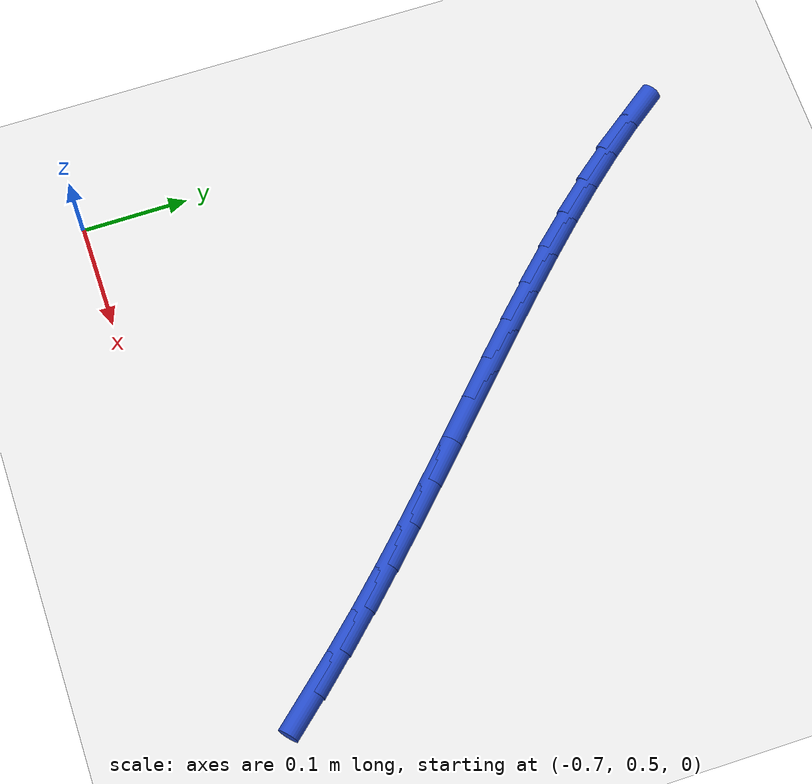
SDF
<sdf version="1.6">
 <world name="default">
  <model name="ground_plane">
   <static>1</static>
   <link name="link">
    <collision name="collision">
     <geometry><plane><normal>0 0 1</normal><size>100 100</size></plane></geometry>
     <surface><friction><ode><mu>100</mu><mu2>50</mu2></ode></friction></surface>
    </collision>
    <visual name="visual">
     <cast_shadows>0</cast_shadows>
     <geometry><plane><normal>0 0 1</normal><size>100 100</size></plane></geometry>
     <material>
      <script><uri>file://media/materials/scripts/gazebo.material</uri><name>Gazebo/WhiteGlow</name></script>
     </material>
    </visual>
   </link>
  </model>
  <model name="line">
   <link name="link_15">
    <pose>-0.21093745845667858 0.5709451672378543 0.01 0 1.57 -0.8494124675856856</pose>
    <collision name="collision">
     <geometry><cylinder><radius>0.01</radius><length>0.08</length></cylinder></geometry>
    </collision>
    <visual name="visual">
     <material>
      <script><name>Gazebo/Blue</name><uri>file://media/materials/scripts/gazebo.material</uri></script>
     </material>
     <geometry><cylinder><radius>0.01</radius><length>0.08</length></cylinder></geometry>
    </visual>
   </link>
   <link name="link_16">
    <pose>-0.23924236004793248 0.6031274088920169 0.01 0 1.57 -0.824879206002455</pose>
    <collision name="collision">
     <geometry><cylinder><radius>0.01</radius><length>0.08</length></cylinder></geometry>
    </collision>
    <visual name="visual">
     <material>
      <script><name>Gazebo/Blue</name><uri>file://media/materials/scripts/gazebo.material</uri></script>
     </material>
     <geometry><cylinder><radius>0.01</radius><length>0.08</length></cylinder></geometry>
    </visual>
   </link>
   <link name="link_17">
    <pose>-0.268456107073038 0.6347440517691096 0.01 0 1.57 -0.8046672164186457</pose>
    <collision name="collision">
     <geometry><cylinder><radius>0.01</radius><length>0.08</length></cylinder></geometry>
    </collision>
    <visual name="visual">
     <material>
      <script><name>Gazebo/Blue</name><uri>file://media/materials/scripts/gazebo.material</uri></script>
     </material>
     <geometry><cylinder><radius>0.01</radius><length>0.08</length></cylinder></geometry>
    </visual>
   </link>
   <link name="link_18">
    <pose>-0.2983870590863537 0.6658512976419765 0.01 0 1.57 -0.7886305568555553</pose>
    <collision name="collision">
     <geometry><cylinder><radius>0.01</radius><length>0.08</length></cylinder></geometry>
    </collision>
    <visual name="visual">
     <material>
      <script><name>Gazebo/Blue</name><uri>file://media/materials/scripts/gazebo.material</uri></script>
     </material>
     <geometry><cylinder><radius>0.01</radius><length>0.08</length></cylinder></geometry>
    </visual>
   </link>
   <link name="link_19">
    <pose>-0.3288435756422382 0.696505348283461 0.01 0 1.57 -0.7766611976439031</pose>
    <collision name="collision">
     <geometry><cylinder><radius>0.01</radius><length>0.08</length></cylinder></geometry>
    </collision>
    <visual name="visual">
     <material>
      <script><name>Gazebo/Blue</name><uri>file://media/materials/scripts/gazebo.material</uri></script>
     </material>
     <geometry><cylinder><radius>0.01</radius><length>0.08</length></cylinder></geometry>
    </visual>
   </link>
   <link name="link_20">
    <pose>-0.35963401629505 0.726762405466407 0.01 0 1.57 -0.7686951042277733</pose>
    <collision name="collision">
     <geometry><cylinder><radius>0.01</radius><length>0.08</length></cylinder></geometry>
    </collision>
    <visual name="visual">
     <material>
      <script><name>Gazebo/Blue</name><uri>file://media/materials/scripts/gazebo.material</uri></script>
     </material>
     <geometry><cylinder><radius>0.01</radius><length>0.08</length></cylinder></geometry>
    </visual>
   </link>
   <link name="link_21">
    <pose>-0.3905667405991477 0.7566786709636583 0.01 0 1.57 -0.7647171326220001</pose>
    <collision name="collision">
     <geometry><cylinder><radius>0.01</radius><length>0.08</length></cylinder></geometry>
    </collision>
    <visual name="visual">
     <material>
      <script><name>Gazebo/Blue</name><uri>file://media/materials/scripts/gazebo.material</uri></script>
     </material>
     <geometry><cylinder><radius>0.01</radius><length>0.08</length></cylinder></geometry>
    </visual>
   </link>
   <link name="link_22">
    <pose>-0.42145010810888994 0.7863103465480586 0.01 0 1.57 -0.7647654142961193</pose>
    <collision name="collision">
     <geometry><cylinder><radius>0.01</radius><length>0.08</length></cylinder></geometry>
    </collision>
    <visual name="visual">
     <material>
      <script><name>Gazebo/Blue</name><uri>file://media/materials/scripts/gazebo.material</uri></script>
     </material>
     <geometry><cylinder><radius>0.01</radius><length>0.08</length></cylinder></geometry>
    </visual>
   </link>
   <link name="link_23">
    <pose>-0.4520924783786352 0.8157136339924517 0.01 0 1.57 -0.7689356907550452</pose>
    <collision name="collision">
     <geometry><cylinder><radius>0.01</radius><length>0.08</length></cylinder></geometry>
    </collision>
    <visual name="visual">
     <material>
      <script><name>Gazebo/Blue</name><uri>file://media/materials/scripts/gazebo.material</uri></script>
     </material>
     <geometry><cylinder><radius>0.01</radius><length>0.08</length></cylinder></geometry>
    </visual>
   </link>
   <link name="link_24">
    <pose>-0.4823022109627422 0.8449447350696813 0.01 0 1.57 -0.7773858409009967</pose>
    <collision name="collision">
     <geometry><cylinder><radius>0.01</radius><length>0.08</length></cylinder></geometry>
    </collision>
    <visual name="visual">
     <material>
      <script><name>Gazebo/Blue</name><uri>file://media/materials/scripts/gazebo.material</uri></script>
     </material>
     <geometry><cylinder><radius>0.01</radius><length>0.08</length></cylinder></geometry>
    </visual>
   </link>
   <link name="link_25">
    <pose>-0.5118876654155692 0.8740598515525911 0.01 0 1.57 -0.7903405949271696</pose>
    <collision name="collision">
     <geometry><cylinder><radius>0.01</radius><length>0.08</length></cylinder></geometry>
    </collision>
    <visual name="visual">
     <material>
      <script><name>Gazebo/Blue</name><uri>file://media/materials/scripts/gazebo.material</uri></script>
     </material>
     <geometry><cylinder><radius>0.01</radius><length>0.08</length></cylinder></geometry>
    </visual>
   </link>
   <link name="link_26">
    <pose>-0.5406572012914752 0.9031151852140251 0.01 0 1.57 -0.8080960969447941</pose>
    <collision name="collision">
     <geometry><cylinder><radius>0.01</radius><length>0.08</length></cylinder></geometry>
    </collision>
    <visual name="visual">
     <material>
      <script><name>Gazebo/Blue</name><uri>file://media/materials/scripts/gazebo.material</uri></script>
     </material>
     <geometry><cylinder><radius>0.01</radius><length>0.08</length></cylinder></geometry>
    </visual>
   </link>
   <link name="link_27">
    <pose>-0.5684191781448183 0.9321669378268269 0.01 0 1.57 -0.8310234933361021</pose>
    <collision name="collision">
     <geometry><cylinder><radius>0.01</radius><length>0.08</length></cylinder></geometry>
    </collision>
    <visual name="visual">
     <material>
      <script><name>Gazebo/Blue</name><uri>file://media/materials/scripts/gazebo.material</uri></script>
     </material>
     <geometry><cylinder><radius>0.01</radius><length>0.08</length></cylinder></geometry>
    </visual>
   </link>
   <link name="link_28">
    <pose>-0.5949819555299574 0.96127131116384 0.01 0 1.57 -0.8595699904722489</pose>
    <collision name="collision">
     <geometry><cylinder><radius>0.01</radius><length>0.08</length></cylinder></geometry>
    </collision>
    <visual name="visual">
     <material>
      <script><name>Gazebo/Blue</name><uri>file://media/materials/scripts/gazebo.material</uri></script>
     </material>
     <geometry><cylinder><radius>0.01</radius><length>0.08</length></cylinder></geometry>
    </visual>
   </link>
   <link name="link_29">
    <pose>-0.6201538930012511 0.9904845069979088 0.01 0 1.57 -0.8942547354429592</pose>
    <collision name="collision">
     <geometry><cylinder><radius>0.01</radius><length>0.08</length></cylinder></geometry>
    </collision>
    <visual name="visual">
     <material>
      <script><name>Gazebo/Blue</name><uri>file://media/materials/scripts/gazebo.material</uri></script>
     </material>
     <geometry><cylinder><radius>0.01</radius><length>0.08</length></cylinder></geometry>
    </visual>
   </link>
   <link name="link_30">
    <pose>-0.6437433501130578 1.019862727101876 0.01 0 1.57 -0.9356553446952278</pose>
    <collision name="collision">
     <geometry><cylinder><radius>0.01</radius><length>0.08</length></cylinder></geometry>
    </collision>
    <visual name="visual">
     <material>
      <script><name>Gazebo/Blue</name><uri>file://media/materials/scripts/gazebo.material</uri></script>
     </material>
     <geometry><cylinder><radius>0.01</radius><length>0.08</length></cylinder></geometry>
    </visual>
   </link>
  </model>
 </world>
</sdf>
